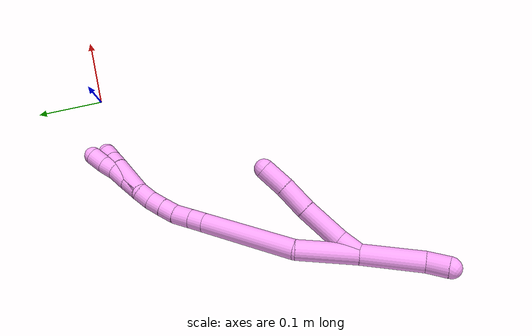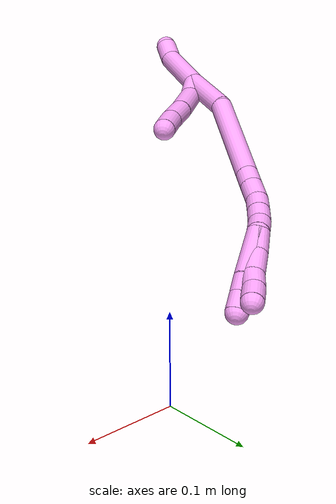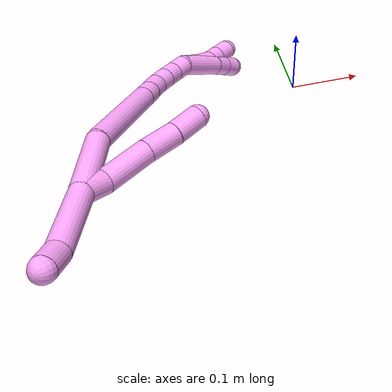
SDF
<sdf version="1.7">
 <world name="default">
  <model name="4">
   <static>0</static>
   <link name="4">
    <collision name="collision-cylinder-e_1_2_8">
     <pose>0.000173 4.8e-05 -0.013869 -3.13812 0.012501 -2.5994</pose>
     <geometry><cylinder><radius>0.0125</radius><length>0.027741</length></cylinder></geometry>
     <surface>
      <friction><ode><mu>1.16</mu><mu2>1.16</mu2><slip1>0</slip1><slip2>0</slip2></ode></friction>
      <contact><ode><kp>1e+06</kp><kd>1</kd><max_vel>0</max_vel><min_depth>0.001</min_depth></ode></contact>
     </surface>
    </collision>
    <visual name="visual-cylinder-e_1_2_8">
     <pose>0.000173 4.8e-05 -0.013869 -3.13812 0.012501 -2.5994</pose>
     <geometry><cylinder><radius>0.0125</radius><length>0.027741</length></cylinder></geometry>
     <material><ambient>1 0.65098 0.996078 1</ambient></material>
    </visual>
    <collision name="collision-cylinder-e_2_8_9">
     <pose>0.007073 0.006196 -0.052746 -2.90234 0.255606 -1.63753</pose>
     <geometry><cylinder><radius>0.0125</radius><length>0.053209</length></cylinder></geometry>
     <surface>
      <friction><ode><mu>1.16</mu><mu2>1.16</mu2><slip1>0</slip1><slip2>0</slip2></ode></friction>
      <contact><ode><kp>1e+06</kp><kd>1</kd><max_vel>0</max_vel><min_depth>0.001</min_depth></ode></contact>
     </surface>
    </collision>
    <visual name="visual-cylinder-e_2_8_9">
     <pose>0.007073 0.006196 -0.052746 -2.90234 0.255606 -1.63753</pose>
     <geometry><cylinder><radius>0.0125</radius><length>0.053209</length></cylinder></geometry>
     <material><ambient>1 0.65098 0.996078 1</ambient></material>
    </visual>
    <collision name="collision-cylinder-e_3_9_10">
     <pose>0.019489 0.015453 -0.094467 -2.95492 0.322795 -2.098</pose>
     <geometry><cylinder><radius>0.0125</radius><length>0.035872</length></cylinder></geometry>
     <surface>
      <friction><ode><mu>1.16</mu><mu2>1.16</mu2><slip1>0</slip1><slip2>0</slip2></ode></friction>
      <contact><ode><kp>1e+06</kp><kd>1</kd><max_vel>0</max_vel><min_depth>0.001</min_depth></ode></contact>
     </surface>
    </collision>
    <visual name="visual-cylinder-e_3_9_10">
     <pose>0.019489 0.015453 -0.094467 -2.95492 0.322795 -2.098</pose>
     <geometry><cylinder><radius>0.0125</radius><length>0.035872</length></cylinder></geometry>
     <material><ambient>1 0.65098 0.996078 1</ambient></material>
    </visual>
    <collision name="collision-cylinder-e_4_10_6">
     <pose>0.029402 0.02265 -0.126706 -2.88705 0.25742 -1.58214</pose>
     <geometry><cylinder><radius>0.0125</radius><length>0.033177</length></cylinder></geometry>
     <surface>
      <friction><ode><mu>1.16</mu><mu2>1.16</mu2><slip1>0</slip1><slip2>0</slip2></ode></friction>
      <contact><ode><kp>1e+06</kp><kd>1</kd><max_vel>0</max_vel><min_depth>0.001</min_depth></ode></contact>
     </surface>
    </collision>
    <visual name="visual-cylinder-e_4_10_6">
     <pose>0.029402 0.02265 -0.126706 -2.88705 0.25742 -1.58214</pose>
     <geometry><cylinder><radius>0.0125</radius><length>0.033177</length></cylinder></geometry>
     <material><ambient>1 0.65098 0.996078 1</ambient></material>
    </visual>
    <collision name="collision-cylinder-e_1_2_11">
     <pose>0.012506 -0.016503 0.030571 0.495003 0.345535 0.088133</pose>
     <geometry><cylinder><radius>0.0125</radius><length>0.073847</length></cylinder></geometry>
     <surface>
      <friction><ode><mu>1.16</mu><mu2>1.16</mu2><slip1>0</slip1><slip2>0</slip2></ode></friction>
      <contact><ode><kp>1e+06</kp><kd>1</kd><max_vel>0</max_vel><min_depth>0.001</min_depth></ode></contact>
     </surface>
    </collision>
    <visual name="visual-cylinder-e_1_2_11">
     <pose>0.012506 -0.016503 0.030571 0.495003 0.345535 0.088133</pose>
     <geometry><cylinder><radius>0.0125</radius><length>0.073847</length></cylinder></geometry>
     <material><ambient>1 0.65098 0.996078 1</ambient></material>
    </visual>
    <collision name="collision-cylinder-e_2_11_5">
     <pose>0.029977 -0.035025 0.07307 0.167632 0.389457 0.033136</pose>
     <geometry><cylinder><radius>0.0125</radius><length>0.026153</length></cylinder></geometry>
     <surface>
      <friction><ode><mu>1.16</mu><mu2>1.16</mu2><slip1>0</slip1><slip2>0</slip2></ode></friction>
      <contact><ode><kp>1e+06</kp><kd>1</kd><max_vel>0</max_vel><min_depth>0.001</min_depth></ode></contact>
     </surface>
    </collision>
    <visual name="visual-cylinder-e_2_11_5">
     <pose>0.029977 -0.035025 0.07307 0.167632 0.389457 0.033136</pose>
     <geometry><cylinder><radius>0.0125</radius><length>0.026153</length></cylinder></geometry>
     <material><ambient>1 0.65098 0.996078 1</ambient></material>
    </visual>
    <collision name="collision-cylinder-e_1_2_12">
     <pose>-0.013003 0.018099 -0.029311 -2.58843 -0.360924 1.14251</pose>
     <geometry><cylinder><radius>0.0125</radius><length>0.073642</length></cylinder></geometry>
     <surface>
      <friction><ode><mu>1.16</mu><mu2>1.16</mu2><slip1>0</slip1><slip2>0</slip2></ode></friction>
      <contact><ode><kp>1e+06</kp><kd>1</kd><max_vel>0</max_vel><min_depth>0.001</min_depth></ode></contact>
     </surface>
    </collision>
    <visual name="visual-cylinder-e_1_2_12">
     <pose>-0.013003 0.018099 -0.029311 -2.58843 -0.360924 1.14251</pose>
     <geometry><cylinder><radius>0.0125</radius><length>0.073642</length></cylinder></geometry>
     <material><ambient>1 0.65098 0.996078 1</ambient></material>
    </visual>
    <collision name="collision-cylinder-e_2_12_13">
     <pose>-0.044514 0.048376 -0.115553 -2.93086 -0.307801 1.94484</pose>
     <geometry><cylinder><radius>0.0125</radius><length>0.122181</length></cylinder></geometry>
     <surface>
      <friction><ode><mu>1.16</mu><mu2>1.16</mu2><slip1>0</slip1><slip2>0</slip2></ode></friction>
      <contact><ode><kp>1e+06</kp><kd>1</kd><max_vel>0</max_vel><min_depth>0.001</min_depth></ode></contact>
     </surface>
    </collision>
    <visual name="visual-cylinder-e_2_12_13">
     <pose>-0.044514 0.048376 -0.115553 -2.93086 -0.307801 1.94484</pose>
     <geometry><cylinder><radius>0.0125</radius><length>0.122181</length></cylinder></geometry>
     <material><ambient>1 0.65098 0.996078 1</ambient></material>
    </visual>
    <collision name="collision-cylinder-e_3_13_14">
     <pose>-0.066017 0.062553 -0.181815 -2.93051 -0.304073 1.93176</pose>
     <geometry><cylinder><radius>0.0125</radius><length>0.020002</length></cylinder></geometry>
     <surface>
      <friction><ode><mu>1.16</mu><mu2>1.16</mu2><slip1>0</slip1><slip2>0</slip2></ode></friction>
      <contact><ode><kp>1e+06</kp><kd>1</kd><max_vel>0</max_vel><min_depth>0.001</min_depth></ode></contact>
     </surface>
    </collision>
    <visual name="visual-cylinder-e_3_13_14">
     <pose>-0.066017 0.062553 -0.181815 -2.93051 -0.304073 1.93176</pose>
     <geometry><cylinder><radius>0.0125</radius><length>0.020002</length></cylinder></geometry>
     <material><ambient>1 0.65098 0.996078 1</ambient></material>
    </visual>
    <collision name="collision-cylinder-e_4_14_15">
     <pose>-0.07262 0.067129 -0.202277 -2.91415 -0.305969 1.86649</pose>
     <geometry><cylinder><radius>0.0125</radius><length>0.023965</length></cylinder></geometry>
     <surface>
      <friction><ode><mu>1.16</mu><mu2>1.16</mu2><slip1>0</slip1><slip2>0</slip2></ode></friction>
      <contact><ode><kp>1e+06</kp><kd>1</kd><max_vel>0</max_vel><min_depth>0.001</min_depth></ode></contact>
     </surface>
    </collision>
    <visual name="visual-cylinder-e_4_14_15">
     <pose>-0.07262 0.067129 -0.202277 -2.91415 -0.305969 1.86649</pose>
     <geometry><cylinder><radius>0.0125</radius><length>0.023965</length></cylinder></geometry>
     <material><ambient>1 0.65098 0.996078 1</ambient></material>
    </visual>
    <collision name="collision-cylinder-e_5_15_16">
     <pose>-0.077041 0.071835 -0.223242 -2.92825 -0.080487 0.719365</pose>
     <geometry><cylinder><radius>0.0125</radius><length>0.020188</length></cylinder></geometry>
     <surface>
      <friction><ode><mu>1.16</mu><mu2>1.16</mu2><slip1>0</slip1><slip2>0</slip2></ode></friction>
      <contact><ode><kp>1e+06</kp><kd>1</kd><max_vel>0</max_vel><min_depth>0.001</min_depth></ode></contact>
     </surface>
    </collision>
    <visual name="visual-cylinder-e_5_15_16">
     <pose>-0.077041 0.071835 -0.223242 -2.92825 -0.080487 0.719365</pose>
     <geometry><cylinder><radius>0.0125</radius><length>0.020188</length></cylinder></geometry>
     <material><ambient>1 0.65098 0.996078 1</ambient></material>
    </visual>
    <collision name="collision-cylinder-e_6_16_17">
     <pose>-0.078469 0.075916 -0.242865 -2.94487 -0.061644 0.60567</pose>
     <geometry><cylinder><radius>0.0125</radius><length>0.020002</length></cylinder></geometry>
     <surface>
      <friction><ode><mu>1.16</mu><mu2>1.16</mu2><slip1>0</slip1><slip2>0</slip2></ode></friction>
      <contact><ode><kp>1e+06</kp><kd>1</kd><max_vel>0</max_vel><min_depth>0.001</min_depth></ode></contact>
     </surface>
    </collision>
    <visual name="visual-cylinder-e_6_16_17">
     <pose>-0.078469 0.075916 -0.242865 -2.94487 -0.061644 0.60567</pose>
     <geometry><cylinder><radius>0.0125</radius><length>0.020002</length></cylinder></geometry>
     <material><ambient>1 0.65098 0.996078 1</ambient></material>
    </visual>
    <collision name="collision-cylinder-e_7_17_1">
     <pose>-0.077874 0.080108 -0.262335 -2.91421 0.121255 -0.977231</pose>
     <geometry><cylinder><radius>0.0125</radius><length>0.02002</length></cylinder></geometry>
     <surface>
      <friction><ode><mu>1.16</mu><mu2>1.16</mu2><slip1>0</slip1><slip2>0</slip2></ode></friction>
      <contact><ode><kp>1e+06</kp><kd>1</kd><max_vel>0</max_vel><min_depth>0.001</min_depth></ode></contact>
     </surface>
    </collision>
    <visual name="visual-cylinder-e_7_17_1">
     <pose>-0.077874 0.080108 -0.262335 -2.91421 0.121255 -0.977231</pose>
     <geometry><cylinder><radius>0.0125</radius><length>0.02002</length></cylinder></geometry>
     <material><ambient>1 0.65098 0.996078 1</ambient></material>
    </visual>
    <collision name="collision-cylinder-e_1_1_18">
     <pose>-0.078591 0.08048 -0.285496 3.00396 -0.14071 -1.59296</pose>
     <geometry><cylinder><radius>0.0125</radius><length>0.027488</length></cylinder></geometry>
     <surface>
      <friction><ode><mu>1.16</mu><mu2>1.16</mu2><slip1>0</slip1><slip2>0</slip2></ode></friction>
      <contact><ode><kp>1e+06</kp><kd>1</kd><max_vel>0</max_vel><min_depth>0.001</min_depth></ode></contact>
     </surface>
    </collision>
    <visual name="visual-cylinder-e_1_1_18">
     <pose>-0.078591 0.08048 -0.285496 3.00396 -0.14071 -1.59296</pose>
     <geometry><cylinder><radius>0.0125</radius><length>0.027488</length></cylinder></geometry>
     <material><ambient>1 0.65098 0.996078 1</ambient></material>
    </visual>
    <collision name="collision-cylinder-e_2_18_19">
     <pose>-0.080848 0.078165 -0.313609 3.11098 -0.022508 -1.26791</pose>
     <geometry><cylinder><radius>0.0125</radius><length>0.029288</length></cylinder></geometry>
     <surface>
      <friction><ode><mu>1.16</mu><mu2>1.16</mu2><slip1>0</slip1><slip2>0</slip2></ode></friction>
      <contact><ode><kp>1e+06</kp><kd>1</kd><max_vel>0</max_vel><min_depth>0.001</min_depth></ode></contact>
     </surface>
    </collision>
    <visual name="visual-cylinder-e_2_18_19">
     <pose>-0.080848 0.078165 -0.313609 3.11098 -0.022508 -1.26791</pose>
     <geometry><cylinder><radius>0.0125</radius><length>0.029288</length></cylinder></geometry>
     <material><ambient>1 0.65098 0.996078 1</ambient></material>
    </visual>
    <collision name="collision-cylinder-e_3_19_20">
     <pose>-0.081879 0.079489 -0.338409 -2.96903 -0.067871 0.748031</pose>
     <geometry><cylinder><radius>0.0125</radius><length>0.020688</length></cylinder></geometry>
     <surface>
      <friction><ode><mu>1.16</mu><mu2>1.16</mu2><slip1>0</slip1><slip2>0</slip2></ode></friction>
      <contact><ode><kp>1e+06</kp><kd>1</kd><max_vel>0</max_vel><min_depth>0.001</min_depth></ode></contact>
     </surface>
    </collision>
    <visual name="visual-cylinder-e_3_19_20">
     <pose>-0.081879 0.079489 -0.338409 -2.96903 -0.067871 0.748031</pose>
     <geometry><cylinder><radius>0.0125</radius><length>0.020688</length></cylinder></geometry>
     <material><ambient>1 0.65098 0.996078 1</ambient></material>
    </visual>
    <collision name="collision-cylinder-e_4_20_4">
     <pose>-0.081617 0.083422 -0.359593 -2.94787 0.0856 -0.830296</pose>
     <geometry><cylinder><radius>0.0125</radius><length>0.022536</length></cylinder></geometry>
     <surface>
      <friction><ode><mu>1.16</mu><mu2>1.16</mu2><slip1>0</slip1><slip2>0</slip2></ode></friction>
      <contact><ode><kp>1e+06</kp><kd>1</kd><max_vel>0</max_vel><min_depth>0.001</min_depth></ode></contact>
     </surface>
    </collision>
    <visual name="visual-cylinder-e_4_20_4">
     <pose>-0.081617 0.083422 -0.359593 -2.94787 0.0856 -0.830296</pose>
     <geometry><cylinder><radius>0.0125</radius><length>0.022536</length></cylinder></geometry>
     <material><ambient>1 0.65098 0.996078 1</ambient></material>
    </visual>
    <collision name="collision-cylinder-e_1_1_21">
     <pose>-0.076804 0.076476 -0.300957 2.94143 -0.004763 -0.047422</pose>
     <geometry><cylinder><radius>0.0125</radius><length>0.059062</length></cylinder></geometry>
     <surface>
      <friction><ode><mu>1.16</mu><mu2>1.16</mu2><slip1>0</slip1><slip2>0</slip2></ode></friction>
      <contact><ode><kp>1e+06</kp><kd>1</kd><max_vel>0</max_vel><min_depth>0.001</min_depth></ode></contact>
     </surface>
    </collision>
    <visual name="visual-cylinder-e_1_1_21">
     <pose>-0.076804 0.076476 -0.300957 2.94143 -0.004763 -0.047422</pose>
     <geometry><cylinder><radius>0.0125</radius><length>0.059062</length></cylinder></geometry>
     <material><ambient>1 0.65098 0.996078 1</ambient></material>
    </visual>
    <collision name="collision-cylinder-e_2_21_22">
     <pose>-0.077646 0.068113 -0.339993 2.89958 -0.067303 -0.540168</pose>
     <geometry><cylinder><radius>0.0125</radius><length>0.020842</length></cylinder></geometry>
     <surface>
      <friction><ode><mu>1.16</mu><mu2>1.16</mu2><slip1>0</slip1><slip2>0</slip2></ode></friction>
      <contact><ode><kp>1e+06</kp><kd>1</kd><max_vel>0</max_vel><min_depth>0.001</min_depth></ode></contact>
     </surface>
    </collision>
    <visual name="visual-cylinder-e_2_21_22">
     <pose>-0.077646 0.068113 -0.339993 2.89958 -0.067303 -0.540168</pose>
     <geometry><cylinder><radius>0.0125</radius><length>0.020842</length></cylinder></geometry>
     <material><ambient>1 0.65098 0.996078 1</ambient></material>
    </visual>
    <collision name="collision-cylinder-e_3_22_3">
     <pose>-0.07894 0.063133 -0.359804 2.89093 -0.059111 -0.46096</pose>
     <geometry><cylinder><radius>0.0125</radius><length>0.020096</length></cylinder></geometry>
     <surface>
      <friction><ode><mu>1.16</mu><mu2>1.16</mu2><slip1>0</slip1><slip2>0</slip2></ode></friction>
      <contact><ode><kp>1e+06</kp><kd>1</kd><max_vel>0</max_vel><min_depth>0.001</min_depth></ode></contact>
     </surface>
    </collision>
    <visual name="visual-cylinder-e_3_22_3">
     <pose>-0.07894 0.063133 -0.359804 2.89093 -0.059111 -0.46096</pose>
     <geometry><cylinder><radius>0.0125</radius><length>0.020096</length></cylinder></geometry>
     <material><ambient>1 0.65098 0.996078 1</ambient></material>
    </visual>
    <collision name="collision-sphere-3">
     <pose>-0.079534 0.060645 -0.369521 0 -0 0</pose>
     <geometry><sphere><radius>0.0125</radius></sphere></geometry>
     <surface>
      <friction><ode><mu>1.16</mu><mu2>1.16</mu2><slip1>0</slip1><slip2>0</slip2></ode></friction>
      <contact><ode><kp>1e+06</kp><kd>1</kd><max_vel>0</max_vel><min_depth>0.001</min_depth></ode></contact>
     </surface>
    </collision>
    <visual name="visual-sphere-3">
     <pose>-0.079534 0.060645 -0.369521 0 -0 0</pose>
     <geometry><sphere><radius>0.0125</radius></sphere></geometry>
     <material><ambient>1 0.65098 0.996078 1</ambient></material>
    </visual>
    <collision name="collision-sphere-22">
     <pose>-0.078346 0.065621 -0.350087 0 -0 0</pose>
     <geometry><sphere><radius>0.0125</radius></sphere></geometry>
     <surface>
      <friction><ode><mu>1.16</mu><mu2>1.16</mu2><slip1>0</slip1><slip2>0</slip2></ode></friction>
      <contact><ode><kp>1e+06</kp><kd>1</kd><max_vel>0</max_vel><min_depth>0.001</min_depth></ode></contact>
     </surface>
    </collision>
    <visual name="visual-sphere-22">
     <pose>-0.078346 0.065621 -0.350087 0 -0 0</pose>
     <geometry><sphere><radius>0.0125</radius></sphere></geometry>
     <material><ambient>1 0.65098 0.996078 1</ambient></material>
    </visual>
    <collision name="collision-sphere-21">
     <pose>-0.076945 0.070604 -0.329899 0 -0 0</pose>
     <geometry><sphere><radius>0.0125</radius></sphere></geometry>
     <surface>
      <friction><ode><mu>1.16</mu><mu2>1.16</mu2><slip1>0</slip1><slip2>0</slip2></ode></friction>
      <contact><ode><kp>1e+06</kp><kd>1</kd><max_vel>0</max_vel><min_depth>0.001</min_depth></ode></contact>
     </surface>
    </collision>
    <visual name="visual-sphere-21">
     <pose>-0.076945 0.070604 -0.329899 0 -0 0</pose>
     <geometry><sphere><radius>0.0125</radius></sphere></geometry>
     <material><ambient>1 0.65098 0.996078 1</ambient></material>
    </visual>
    <collision name="collision-sphere-4">
     <pose>-0.080654 0.085584 -0.37061 0 -0 0</pose>
     <geometry><sphere><radius>0.0125</radius></sphere></geometry>
     <surface>
      <friction><ode><mu>1.16</mu><mu2>1.16</mu2><slip1>0</slip1><slip2>0</slip2></ode></friction>
      <contact><ode><kp>1e+06</kp><kd>1</kd><max_vel>0</max_vel><min_depth>0.001</min_depth></ode></contact>
     </surface>
    </collision>
    <visual name="visual-sphere-4">
     <pose>-0.080654 0.085584 -0.37061 0 -0 0</pose>
     <geometry><sphere><radius>0.0125</radius></sphere></geometry>
     <material><ambient>1 0.65098 0.996078 1</ambient></material>
    </visual>
    <collision name="collision-sphere-20">
     <pose>-0.082581 0.081261 -0.348576 0 -0 0</pose>
     <geometry><sphere><radius>0.0125</radius></sphere></geometry>
     <surface>
      <friction><ode><mu>1.16</mu><mu2>1.16</mu2><slip1>0</slip1><slip2>0</slip2></ode></friction>
      <contact><ode><kp>1e+06</kp><kd>1</kd><max_vel>0</max_vel><min_depth>0.001</min_depth></ode></contact>
     </surface>
    </collision>
    <visual name="visual-sphere-20">
     <pose>-0.082581 0.081261 -0.348576 0 -0 0</pose>
     <geometry><sphere><radius>0.0125</radius></sphere></geometry>
     <material><ambient>1 0.65098 0.996078 1</ambient></material>
    </visual>
    <collision name="collision-sphere-11">
     <pose>0.025012 -0.033006 0.061142 0 -0 0</pose>
     <geometry><sphere><radius>0.0125</radius></sphere></geometry>
     <surface>
      <friction><ode><mu>1.16</mu><mu2>1.16</mu2><slip1>0</slip1><slip2>0</slip2></ode></friction>
      <contact><ode><kp>1e+06</kp><kd>1</kd><max_vel>0</max_vel><min_depth>0.001</min_depth></ode></contact>
     </surface>
    </collision>
    <visual name="visual-sphere-11">
     <pose>0.025012 -0.033006 0.061142 0 -0 0</pose>
     <geometry><sphere><radius>0.0125</radius></sphere></geometry>
     <material><ambient>1 0.65098 0.996078 1</ambient></material>
    </visual>
    <collision name="collision-sphere-6">
     <pose>0.033626 0.026689 -0.142232 0 -0 0</pose>
     <geometry><sphere><radius>0.0125</radius></sphere></geometry>
     <surface>
      <friction><ode><mu>1.16</mu><mu2>1.16</mu2><slip1>0</slip1><slip2>0</slip2></ode></friction>
      <contact><ode><kp>1e+06</kp><kd>1</kd><max_vel>0</max_vel><min_depth>0.001</min_depth></ode></contact>
     </surface>
    </collision>
    <visual name="visual-sphere-6">
     <pose>0.033626 0.026689 -0.142232 0 -0 0</pose>
     <geometry><sphere><radius>0.0125</radius></sphere></geometry>
     <material><ambient>1 0.65098 0.996078 1</ambient></material>
    </visual>
    <collision name="collision-sphere-10">
     <pose>0.025179 0.01861 -0.111181 0 -0 0</pose>
     <geometry><sphere><radius>0.0125</radius></sphere></geometry>
     <surface>
      <friction><ode><mu>1.16</mu><mu2>1.16</mu2><slip1>0</slip1><slip2>0</slip2></ode></friction>
      <contact><ode><kp>1e+06</kp><kd>1</kd><max_vel>0</max_vel><min_depth>0.001</min_depth></ode></contact>
     </surface>
    </collision>
    <visual name="visual-sphere-10">
     <pose>0.025179 0.01861 -0.111181 0 -0 0</pose>
     <geometry><sphere><radius>0.0125</radius></sphere></geometry>
     <material><ambient>1 0.65098 0.996078 1</ambient></material>
    </visual>
    <collision name="collision-sphere-9">
     <pose>0.0138 0.012296 -0.077753 0 -0 0</pose>
     <geometry><sphere><radius>0.0125</radius></sphere></geometry>
     <surface>
      <friction><ode><mu>1.16</mu><mu2>1.16</mu2><slip1>0</slip1><slip2>0</slip2></ode></friction>
      <contact><ode><kp>1e+06</kp><kd>1</kd><max_vel>0</max_vel><min_depth>0.001</min_depth></ode></contact>
     </surface>
    </collision>
    <visual name="visual-sphere-9">
     <pose>0.0138 0.012296 -0.077753 0 -0 0</pose>
     <geometry><sphere><radius>0.0125</radius></sphere></geometry>
     <material><ambient>1 0.65098 0.996078 1</ambient></material>
    </visual>
    <collision name="collision-sphere-2">
     <geometry><sphere><radius>0.0125</radius></sphere></geometry>
     <surface>
      <friction><ode><mu>1.16</mu><mu2>1.16</mu2><slip1>0</slip1><slip2>0</slip2></ode></friction>
      <contact><ode><kp>1e+06</kp><kd>1</kd><max_vel>0</max_vel><min_depth>0.001</min_depth></ode></contact>
     </surface>
    </collision>
    <visual name="visual-sphere-2">
     <geometry><sphere><radius>0.0125</radius></sphere></geometry>
     <material><ambient>1 0.65098 0.996078 1</ambient></material>
    </visual>
    <collision name="collision-sphere-19">
     <pose>-0.081178 0.077717 -0.328243 0 -0 0</pose>
     <geometry><sphere><radius>0.0125</radius></sphere></geometry>
     <surface>
      <friction><ode><mu>1.16</mu><mu2>1.16</mu2><slip1>0</slip1><slip2>0</slip2></ode></friction>
      <contact><ode><kp>1e+06</kp><kd>1</kd><max_vel>0</max_vel><min_depth>0.001</min_depth></ode></contact>
     </surface>
    </collision>
    <visual name="visual-sphere-19">
     <pose>-0.081178 0.077717 -0.328243 0 -0 0</pose>
     <geometry><sphere><radius>0.0125</radius></sphere></geometry>
     <material><ambient>1 0.65098 0.996078 1</ambient></material>
    </visual>
    <collision name="collision-sphere-8">
     <pose>0.000347 9.6e-05 -0.027739 0 -0 0</pose>
     <geometry><sphere><radius>0.0125</radius></sphere></geometry>
     <surface>
      <friction><ode><mu>1.16</mu><mu2>1.16</mu2><slip1>0</slip1><slip2>0</slip2></ode></friction>
      <contact><ode><kp>1e+06</kp><kd>1</kd><max_vel>0</max_vel><min_depth>0.001</min_depth></ode></contact>
     </surface>
    </collision>
    <visual name="visual-sphere-8">
     <pose>0.000347 9.6e-05 -0.027739 0 -0 0</pose>
     <geometry><sphere><radius>0.0125</radius></sphere></geometry>
     <material><ambient>1 0.65098 0.996078 1</ambient></material>
    </visual>
    <collision name="collision-sphere-5">
     <pose>0.034942 -0.037043 0.084997 0 -0 0</pose>
     <geometry><sphere><radius>0.0125</radius></sphere></geometry>
     <surface>
      <friction><ode><mu>1.16</mu><mu2>1.16</mu2><slip1>0</slip1><slip2>0</slip2></ode></friction>
      <contact><ode><kp>1e+06</kp><kd>1</kd><max_vel>0</max_vel><min_depth>0.001</min_depth></ode></contact>
     </surface>
    </collision>
    <visual name="visual-sphere-5">
     <pose>0.034942 -0.037043 0.084997 0 -0 0</pose>
     <geometry><sphere><radius>0.0125</radius></sphere></geometry>
     <material><ambient>1 0.65098 0.996078 1</ambient></material>
    </visual>
    <collision name="collision-sphere-12">
     <pose>-0.026006 0.036197 -0.058622 0 -0 0</pose>
     <geometry><sphere><radius>0.0125</radius></sphere></geometry>
     <surface>
      <friction><ode><mu>1.16</mu><mu2>1.16</mu2><slip1>0</slip1><slip2>0</slip2></ode></friction>
      <contact><ode><kp>1e+06</kp><kd>1</kd><max_vel>0</max_vel><min_depth>0.001</min_depth></ode></contact>
     </surface>
    </collision>
    <visual name="visual-sphere-12">
     <pose>-0.026006 0.036197 -0.058622 0 -0 0</pose>
     <geometry><sphere><radius>0.0125</radius></sphere></geometry>
     <material><ambient>1 0.65098 0.996078 1</ambient></material>
    </visual>
    <collision name="collision-sphere-13">
     <pose>-0.063022 0.060554 -0.172485 0 -0 0</pose>
     <geometry><sphere><radius>0.0125</radius></sphere></geometry>
     <surface>
      <friction><ode><mu>1.16</mu><mu2>1.16</mu2><slip1>0</slip1><slip2>0</slip2></ode></friction>
      <contact><ode><kp>1e+06</kp><kd>1</kd><max_vel>0</max_vel><min_depth>0.001</min_depth></ode></contact>
     </surface>
    </collision>
    <visual name="visual-sphere-13">
     <pose>-0.063022 0.060554 -0.172485 0 -0 0</pose>
     <geometry><sphere><radius>0.0125</radius></sphere></geometry>
     <material><ambient>1 0.65098 0.996078 1</ambient></material>
    </visual>
    <collision name="collision-sphere-14">
     <pose>-0.069011 0.064552 -0.191146 0 -0 0</pose>
     <geometry><sphere><radius>0.0125</radius></sphere></geometry>
     <surface>
      <friction><ode><mu>1.16</mu><mu2>1.16</mu2><slip1>0</slip1><slip2>0</slip2></ode></friction>
      <contact><ode><kp>1e+06</kp><kd>1</kd><max_vel>0</max_vel><min_depth>0.001</min_depth></ode></contact>
     </surface>
    </collision>
    <visual name="visual-sphere-14">
     <pose>-0.069011 0.064552 -0.191146 0 -0 0</pose>
     <geometry><sphere><radius>0.0125</radius></sphere></geometry>
     <material><ambient>1 0.65098 0.996078 1</ambient></material>
    </visual>
    <collision name="collision-sphere-15">
     <pose>-0.07623 0.069705 -0.213409 0 -0 0</pose>
     <geometry><sphere><radius>0.0125</radius></sphere></geometry>
     <surface>
      <friction><ode><mu>1.16</mu><mu2>1.16</mu2><slip1>0</slip1><slip2>0</slip2></ode></friction>
      <contact><ode><kp>1e+06</kp><kd>1</kd><max_vel>0</max_vel><min_depth>0.001</min_depth></ode></contact>
     </surface>
    </collision>
    <visual name="visual-sphere-15">
     <pose>-0.07623 0.069705 -0.213409 0 -0 0</pose>
     <geometry><sphere><radius>0.0125</radius></sphere></geometry>
     <material><ambient>1 0.65098 0.996078 1</ambient></material>
    </visual>
    <collision name="collision-sphere-16">
     <pose>-0.077853 0.073965 -0.233076 0 -0 0</pose>
     <geometry><sphere><radius>0.0125</radius></sphere></geometry>
     <surface>
      <friction><ode><mu>1.16</mu><mu2>1.16</mu2><slip1>0</slip1><slip2>0</slip2></ode></friction>
      <contact><ode><kp>1e+06</kp><kd>1</kd><max_vel>0</max_vel><min_depth>0.001</min_depth></ode></contact>
     </surface>
    </collision>
    <visual name="visual-sphere-16">
     <pose>-0.077853 0.073965 -0.233076 0 -0 0</pose>
     <geometry><sphere><radius>0.0125</radius></sphere></geometry>
     <material><ambient>1 0.65098 0.996078 1</ambient></material>
    </visual>
    <collision name="collision-sphere-17">
     <pose>-0.079085 0.077868 -0.252655 0 -0 0</pose>
     <geometry><sphere><radius>0.0125</radius></sphere></geometry>
     <surface>
      <friction><ode><mu>1.16</mu><mu2>1.16</mu2><slip1>0</slip1><slip2>0</slip2></ode></friction>
      <contact><ode><kp>1e+06</kp><kd>1</kd><max_vel>0</max_vel><min_depth>0.001</min_depth></ode></contact>
     </surface>
    </collision>
    <visual name="visual-sphere-17">
     <pose>-0.079085 0.077868 -0.252655 0 -0 0</pose>
     <geometry><sphere><radius>0.0125</radius></sphere></geometry>
     <material><ambient>1 0.65098 0.996078 1</ambient></material>
    </visual>
    <collision name="collision-sphere-1">
     <pose>-0.076663 0.082348 -0.272016 0 -0 0</pose>
     <geometry><sphere><radius>0.0125</radius></sphere></geometry>
     <surface>
      <friction><ode><mu>1.16</mu><mu2>1.16</mu2><slip1>0</slip1><slip2>0</slip2></ode></friction>
      <contact><ode><kp>1e+06</kp><kd>1</kd><max_vel>0</max_vel><min_depth>0.001</min_depth></ode></contact>
     </surface>
    </collision>
    <visual name="visual-sphere-1">
     <pose>-0.076663 0.082348 -0.272016 0 -0 0</pose>
     <geometry><sphere><radius>0.0125</radius></sphere></geometry>
     <material><ambient>1 0.65098 0.996078 1</ambient></material>
    </visual>
    <collision name="collision-sphere-18">
     <pose>-0.080519 0.078613 -0.298976 0 -0 0</pose>
     <geometry><sphere><radius>0.0125</radius></sphere></geometry>
     <surface>
      <friction><ode><mu>1.16</mu><mu2>1.16</mu2><slip1>0</slip1><slip2>0</slip2></ode></friction>
      <contact><ode><kp>1e+06</kp><kd>1</kd><max_vel>0</max_vel><min_depth>0.001</min_depth></ode></contact>
     </surface>
    </collision>
    <visual name="visual-sphere-18">
     <pose>-0.080519 0.078613 -0.298976 0 -0 0</pose>
     <geometry><sphere><radius>0.0125</radius></sphere></geometry>
     <material><ambient>1 0.65098 0.996078 1</ambient></material>
    </visual>
    <inertial>
     <pose>-0.034907 0.039212 -0.146963 0 -0 0</pose>
     <mass>0.75</mass>
     <inertia>
      <ixx>0.00016</ixx>
      <ixy>0</ixy>
      <ixz>0</ixz>
      <iyy>0.000223</iyy>
      <iyz>0</iyz>
      <izz>-3.4e-05</izz>
     </inertia>
    </inertial>
   </link>
   <pose>-0.298258 -0.29129 0.218292 1.06016 -0.611098 -0.597295</pose>
  </model>
 </world>
</sdf>
